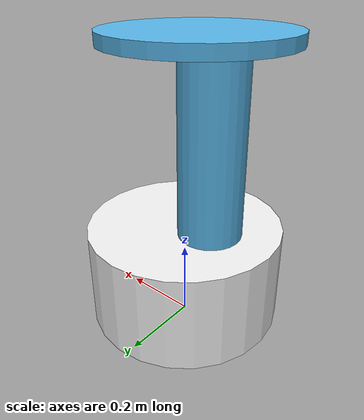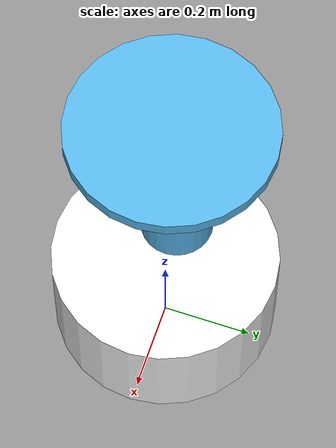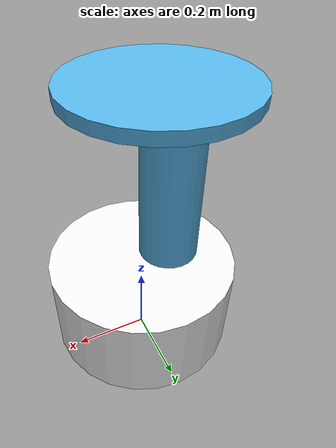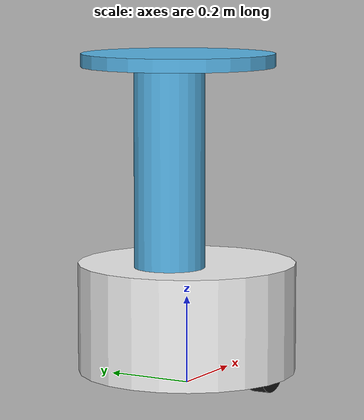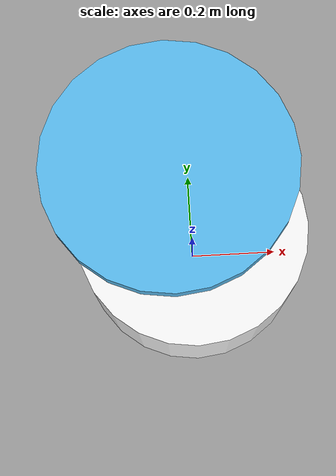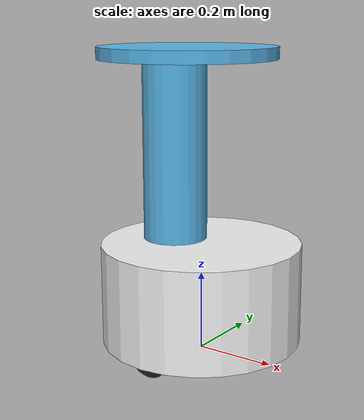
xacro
<?xml version="1.0"?>
<!-- 서빙로봇형 차동구동 로봇: 가운데 구동륜 2개 + 앞뒤 캐스터, 앞쪽 270° LiDAR, 기둥 위 하향 깊이카메라. 뒤쪽은 센서 없음. -->
<robot name="servi" xmlns:xacro="http://www.ros.org/wiki/xacro">
  <xacro:property name="wr" value="0.06"/>      <!-- 바퀴 반지름 -->
  <xacro:property name="ws" value="0.40"/>      <!-- 바퀴 간격 -->
  <xacro:property name="br" value="0.25"/>      <!-- 몸체 반지름 -->

  <xacro:macro name="cyl_inertia" params="m r l">
    <inertia ixx="${m*(3*r*r+l*l)/12}" iyy="${m*(3*r*r+l*l)/12}" izz="${m*r*r/2}" ixy="0" ixz="0" iyz="0"/>
  </xacro:macro>

  <link name="base_footprint"/>
  <joint name="base_joint" type="fixed">
    <parent link="base_footprint"/><child link="base_link"/><origin xyz="0 0 ${wr}"/>
  </joint>

  <link name="base_link">
    <visual><origin xyz="0 0 0.095"/><geometry><cylinder radius="${br}" length="0.25"/></geometry>
      <material name="body"><color rgba="0.95 0.95 0.95 1"/></material></visual>
    <collision><origin xyz="0 0 0.095"/><geometry><cylinder radius="${br}" length="0.25"/></geometry></collision>
    <visual><origin xyz="-0.08 0 0.445"/><geometry><cylinder radius="0.08" length="0.45"/></geometry></visual>
    <collision><origin xyz="-0.08 0 0.445"/><geometry><cylinder radius="0.08" length="0.45"/></geometry></collision>
    <visual><origin xyz="-0.04 0 0.685"/><geometry><cylinder radius="0.22" length="0.03"/></geometry></visual>
    <inertial><origin xyz="0.02 0 0.13"/><mass value="14.0"/><xacro:cyl_inertia m="14.0" r="${br}" l="0.4"/></inertial>
  </link>

  <xacro:macro name="wheel" params="side y">
    <link name="${side}_wheel">
      <visual><origin rpy="${pi/2} 0 0"/><geometry><cylinder radius="${wr}" length="0.04"/></geometry>
        <material name="tire"><color rgba="0.1 0.1 0.1 1"/></material></visual>
      <!-- 충돌은 구: 원통 바퀴는 ODE에서 바닥 판 이음매·얇은 상자 모서리에 걸려 멈춘다 -->
      <collision><geometry><sphere radius="${wr}"/></geometry></collision>
      <inertial><mass value="0.5"/><xacro:cyl_inertia m="0.5" r="${wr}" l="0.04"/></inertial>
    </link>
    <joint name="${side}_wheel_joint" type="continuous">
      <parent link="base_link"/><child link="${side}_wheel"/><origin xyz="0 ${y} 0"/><axis xyz="0 1 0"/>
    </joint>
    <gazebo reference="${side}_wheel"><mu1>1.2</mu1><mu2>1.2</mu2><kp>1e6</kp><kd>10</kd><minDepth>0.001</minDepth><maxVel>0.1</maxVel></gazebo>
  </xacro:macro>
  <xacro:wheel side="left" y="${ws/2}"/>
  <xacro:wheel side="right" y="${-ws/2}"/>

  <xacro:macro name="caster" params="name x z">
    <link name="${name}">
      <collision><geometry><sphere radius="0.03"/></geometry></collision>
      <inertial><mass value="0.1"/><inertia ixx="1e-5" iyy="1e-5" izz="1e-5" ixy="0" ixz="0" iyz="0"/></inertial>
    </link>
    <joint name="${name}_joint" type="fixed"><parent link="base_link"/><child link="${name}"/><origin xyz="${x} 0 ${z}"/></joint>
    <gazebo reference="${name}"><mu1>0.0</mu1><mu2>0.0</mu2><kp>1e6</kp><kd>10</kd></gazebo>
  </xacro:macro>
  <xacro:caster name="front_caster" x="0.17" z="-0.03"/>
  <!-- 뒤 캐스터는 4 mm 띄워 3점 지지 (바퀴에 하중이 실리게) -->
  <xacro:caster name="rear_caster" x="-0.17" z="-0.026"/>

  <!-- LiDAR: 몸체 윗면 앞쪽, 바닥에서 32 cm. 뒤쪽 90°는 기둥이 가려 시야에서 뺀다. -->
  <link name="laser"/>
  <joint name="laser_joint" type="fixed"><parent link="base_link"/><child link="laser"/><origin xyz="0.10 0 0.26"/></joint>
  <gazebo reference="laser">
    <sensor name="lidar" type="ray">
      <update_rate>10</update_rate><visualize>false</visualize>
      <ray>
        <scan><horizontal><samples>270</samples><resolution>1</resolution>
          <min_angle>-2.356</min_angle><max_angle>2.356</max_angle></horizontal></scan>
        <range><min>0.10</min><max>8.0</max><resolution>0.01</resolution></range>
        <noise><type>gaussian</type><mean>0.0</mean><stddev>0.01</stddev></noise>
      </ray>
      <plugin name="lidar" filename="libgazebo_ros_ray_sensor.so">
        <ros><remapping>~/out:=scan</remapping></ros>
        <output_type>sensor_msgs/LaserScan</output_type><frame_name>laser</frame_name>
      </plugin>
    </sensor>
  </gazebo>

  <!-- 깊이카메라: 기둥 앞면, 바닥에서 66 cm, 45° 아래로. D435급 시야(86°×58°)를 160×120으로 줄여 쓴다. -->
  <link name="camera_link"/>
  <joint name="camera_joint" type="fixed">
    <parent link="base_link"/><child link="camera_link"/><origin xyz="0.0 0 0.60" rpy="0 0.785 0"/>
  </joint>
  <link name="camera_optical"/>
  <joint name="camera_optical_joint" type="fixed">
    <parent link="camera_link"/><child link="camera_optical"/><origin rpy="${-pi/2} 0 ${-pi/2}"/>
  </joint>
  <gazebo reference="camera_link">
    <sensor name="depth" type="depth">
      <update_rate>10</update_rate><always_on>true</always_on>
      <camera>
        <horizontal_fov>1.50</horizontal_fov>
        <image><width>160</width><height>120</height><format>R8G8B8</format></image>
        <clip><near>0.15</near><far>4.0</far></clip>
        <noise><type>gaussian</type><mean>0.0</mean><stddev>0.006</stddev></noise>
      </camera>
      <plugin name="depth_cam" filename="libgazebo_ros_camera.so">
        <ros><namespace>/depth_cam</namespace></ros>
        <camera_name>depth_cam</camera_name><frame_name>camera_optical</frame_name>
        <min_depth>0.15</min_depth><max_depth>4.0</max_depth>
      </plugin>
    </sensor>
  </gazebo>

  <!-- 하향 IR 낭떠러지 센서 4개 (룸바식): 몸체 앞쪽 가장자리, 바닥 위 2.5 cm에서 수직 아래. P1i 조건에서만 ir_guard가 쓴다. -->
  <!-- ir_r: 앞 IR 4개의 중심 거리 (v4 B: sim.launch.py가 geometry.IR_RADIUS를 넘긴다). 뒤 IR 2개는 0.24 그대로. -->
  <xacro:arg name="ir_r" default="0.24"/>
  <!-- wheel_acc: 바퀴 가감속 한계 [m/s²] (v5 B 제동 민감도: sim.launch.py가 geometry.WHEEL_ACC를 넘긴다. 기본 3.0) -->
  <xacro:arg name="wheel_acc" default="3.0"/>
  <xacro:property name="ir_r" value="$(arg ir_r)"/>
  <xacro:macro name="ir" params="name a r:=${ir_r}">
    <link name="ir_${name}"/>
    <joint name="ir_${name}_joint" type="fixed">
      <parent link="base_link"/><child link="ir_${name}"/>
      <origin xyz="${r*cos(radians(a))} ${r*sin(radians(a))} -0.035" rpy="0 ${pi/2} 0"/>
    </joint>
    <gazebo reference="ir_${name}">
      <sensor name="ir_${name}" type="ray">
        <update_rate>20</update_rate><visualize>false</visualize>
        <ray>
          <scan><horizontal><samples>1</samples><resolution>1</resolution><min_angle>0</min_angle><max_angle>0</max_angle></horizontal></scan>
          <range><min>0.005</min><max>0.25</max><resolution>0.001</resolution></range>
          <noise><type>gaussian</type><mean>0.0</mean><stddev>0.003</stddev></noise>
        </ray>
        <plugin name="ir_${name}" filename="libgazebo_ros_ray_sensor.so">
          <ros><namespace>/ir</namespace><remapping>~/out:=${name}</remapping></ros>
          <output_type>sensor_msgs/Range</output_type><radiation_type>infrared</radiation_type>
          <frame_name>ir_${name}</frame_name>
        </plugin>
      </sensor>
    </gazebo>
  </xacro:macro>
  <xacro:ir name="r60" a="-60"/>
  <xacro:ir name="r20" a="-20"/>
  <xacro:ir name="l20" a="20"/>
  <xacro:ir name="l60" a="60"/>
  <!-- 뒤 IR 2개 (v2 10/30): P1irb에서만 ir_guard가 후진을 막는 데 쓴다. 다른 조건에서는 발행만 되고 쓰이지 않는다 -->
  <xacro:ir name="r160" a="-160" r="0.24"/>
  <xacro:ir name="l160" a="160" r="0.24"/>

  <gazebo>
    <plugin name="diff_drive" filename="libgazebo_ros_diff_drive.so">
      <update_rate>50</update_rate>
      <left_joint>left_wheel_joint</left_joint><right_joint>right_wheel_joint</right_joint>
      <wheel_separation>${ws}</wheel_separation><wheel_diameter>${2*wr}</wheel_diameter>
      <max_wheel_torque>20</max_wheel_torque><max_wheel_acceleration>$(arg wheel_acc)</max_wheel_acceleration>
      <publish_odom>true</publish_odom><publish_odom_tf>true</publish_odom_tf><publish_wheel_tf>false</publish_wheel_tf>
      <odometry_frame>odom</odometry_frame><robot_base_frame>base_footprint</robot_base_frame>
      <odometry_source>0</odometry_source>  <!-- 0 = 바퀴 인코더 (밀려서 생긴 이동은 모른다) -->
      <ros><remapping>cmd_vel:=cmd_vel_hw</remapping></ros>  <!-- 바퀴는 ir_guard를 거친 명령만 받는다 -->
    </plugin>
    <plugin name="joint_states" filename="libgazebo_ros_joint_state_publisher.so">
      <update_rate>20</update_rate><joint_name>left_wheel_joint</joint_name><joint_name>right_wheel_joint</joint_name>
    </plugin>
    <plugin name="ground_truth" filename="libgazebo_ros_p3d.so">
      <ros><remapping>odom:=ground_truth</remapping></ros>
      <body_name>base_footprint</body_name><frame_name>world</frame_name><update_rate>20</update_rate>
    </plugin>
  </gazebo>
</robot>
